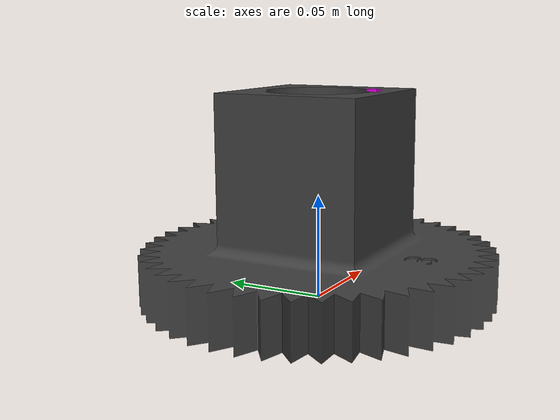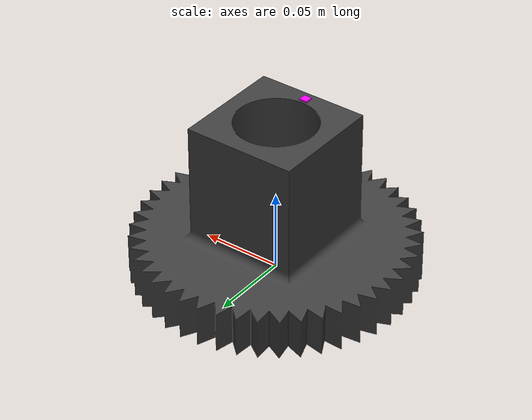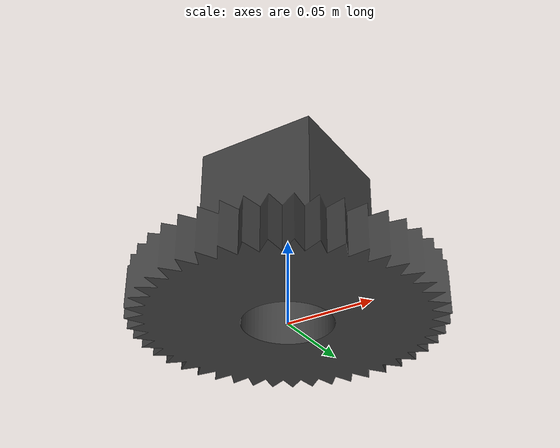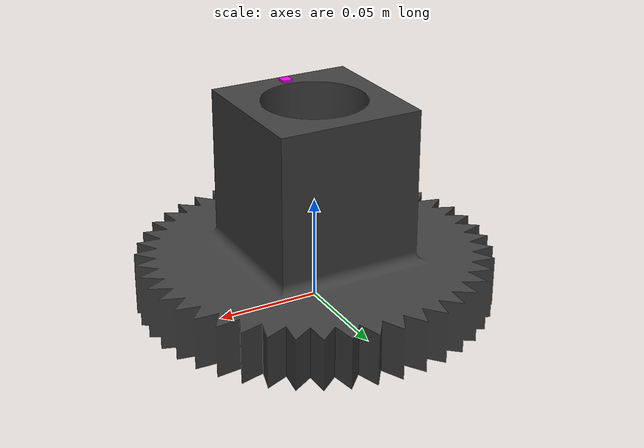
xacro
<?xml version="1.0" ?>
<robot name="third_gear" xmlns:xacro="http://wiki.ros.org/xacro" >

    <link name="third_gear">
        <visual>
            <origin rpy="0 0 0" xyz="0 0 0"/>
            <geometry>
                <mesh filename="file://$(find sirgas_description)/meshes/Third_Gear.stl" />
            </geometry>
            <material name="DarkGrey">
                <color rgba="0.25 0.25 0.25 1.0" />
            </material>
        </visual>
        <collision>
            <origin rpy="0 0 0" xyz="0 0 0"/>
            <geometry>
                <mesh filename="file://$(find sirgas_description)/meshes/Third_Gear.stl" />
            </geometry>
        </collision>
        <inertial>
            <mass value="0.538"/>
            <origin rpy="0 0 0" xyz="0 0 0.01483255"/>
            <inertia ixx="0.00095806" ixy="0.0" ixz="0.0" iyx="0.0" iyy="0.00095831" iyz="0.0" izx="0.0" izy= "0.0" izz="0.00180386"/>
        </inertial>
    </link>

    <!-- Liner Info -->

    <link name="liner8">
        <visual>
            <origin rpy="0 0 0" xyz="0 0 0"/>
            <geometry>
                <box size="0.005 0.005 0.001"/>
            </geometry>
            <material name="Purple">
                <color rgba="1.0 0 1.0 1.0" />
            </material>
        </visual>
    </link>

    <joint name="liner8_pbt" type="fixed">
        <parent link="third_gear"/>
        <child link="liner8"/>
        <origin rpy="0 0 0" xyz="0.0 -0.028 0.101"/>
        <axis xyz="0 0 1"/>
    </joint>

</robot>
